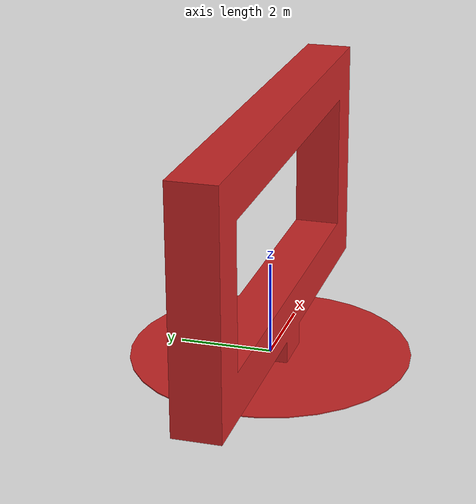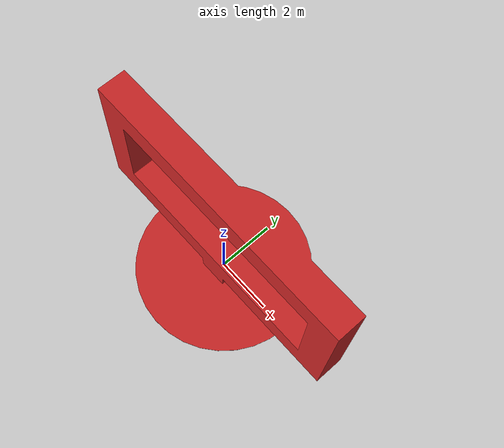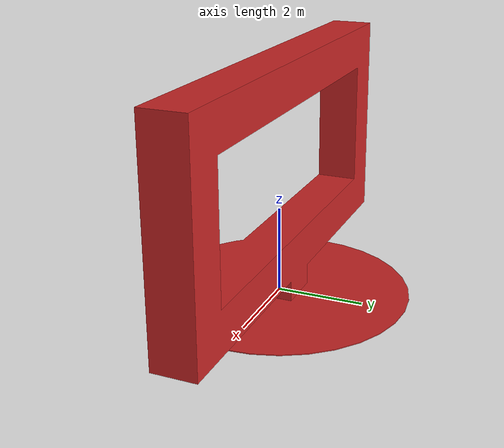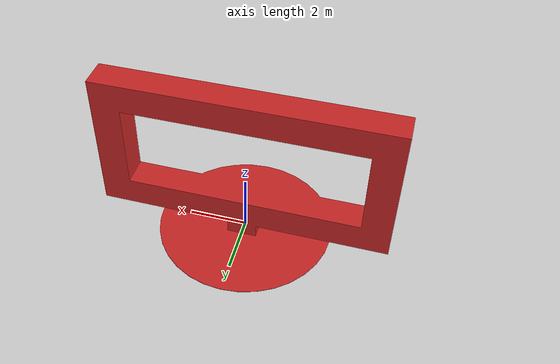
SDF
<?xml version='1.0'?>
<sdf version='1.4'>
  <model name="frame">
    <static>1</static>
    <link name='link'>
        <inertial>
          <pose>-1.1e-05 -0.004833 0.61243 0 -0 0</pose>
          <mass>8.6055</mass>
          <inertia>
            <ixx>2.3731</ixx>
            <ixy>-1.4724e-06</ixy>
            <ixz>-1.6338e-05</ixz>
            <iyy>3.0442</iyy>
            <iyz>0.012591</iyz>
            <izz>0.73145</izz>
          </inertia>
        </inertial>
        <collision name='collision'>
          <pose>0 0 0 1.5708 -0 0</pose>
          <geometry>
            <mesh>
              <scale>1 1 1</scale>
              <uri>model://frame/materials/frame.STL</uri>
            </mesh>
          </geometry>
          <surface>
            <contact>
              <ode/>
            </contact>
            <bounce/>
            <friction>
              <torsional>
                <ode/>
              </torsional>
              <ode/>
            </friction>
          </surface>
          <max_contacts>10</max_contacts>
        </collision>
        <visual name='visual'>
          <pose>0 0 0 1.5708 -0 0</pose>
          <geometry>
            <mesh>
              <scale>1 1 1</scale>
              <uri>model://frame/materials/frame.STL</uri>
            </mesh>
          </geometry>
        <material>
          <script>
            <uri>file://media/materials/scripts/gazebo.material</uri>
            <name>Gazebo/Red</name>
          </script>
        </material>
        </visual>
      </link>
  </model>
</sdf>
